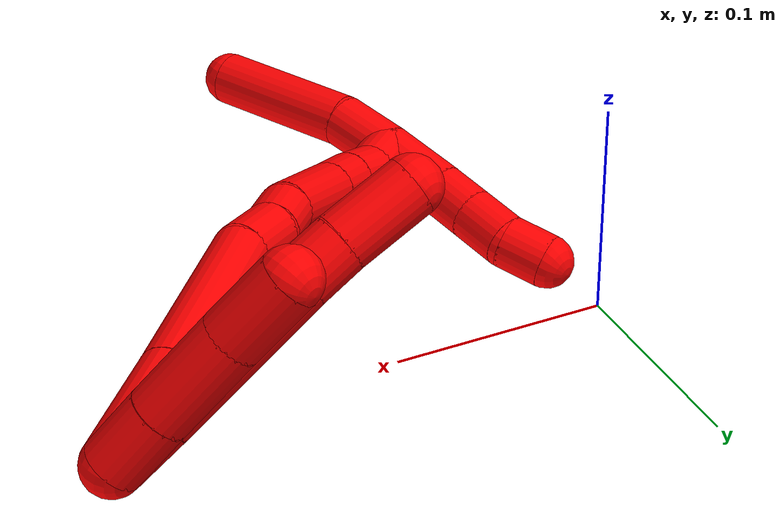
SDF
<sdf version="1.7">
 <world name="default">
  <model name="photoneo_s_sensor">
   <static>1</static>
   <pose>0 0 2 1.57079 1.57079 3.14159</pose>
   <link name="link">
    <inertial><mass>0.1</mass></inertial>
    <sensor name="sensor" type="depth">
     <update_rate>30</update_rate>
     <camera>
      <horizontal_fov>1.22</horizontal_fov>
      <image><width>1920</width><height>1200</height><format>B8G8R8</format></image>
      <clip><near>0.1</near><far>4</far></clip>
      <depth_camera><output>points</output></depth_camera>
     </camera>
     <plugin name="camera_plugin" filename="libgazebo_ros_depth_camera.so">
      <baseline>0.2</baseline>
      <alwaysOn>1</alwaysOn>
      <updateRate>0.0</updateRate>
      <cameraName>camera_ir</cameraName>
      <imageTopicName>/camera/color/image_raw</imageTopicName>
      <cameraInfoTopicName>/camera/color/camera_info</cameraInfoTopicName>
      <depthImageTopicName>/camera/depth/image_raw</depthImageTopicName>
      <depthImageCameraInfoTopicName>/camera/depth/camera_info</depthImageCameraInfoTopicName>
      <pointCloudTopicName>/camera/depth/points</pointCloudTopicName>
      <frameName>fr_optical</frameName>
      <pointCloudCutoff>0.1</pointCloudCutoff>
      <pointCloudCutoffMax>2.0</pointCloudCutoffMax>
      <distortionK1>0</distortionK1>
      <distortionK2>0</distortionK2>
      <distortionK3>0</distortionK3>
      <distortionT1>0</distortionT1>
      <distortionT2>0</distortionT2>
      <CxPrime>0</CxPrime>
      <Cx>0</Cx>
      <Cy>0</Cy>
      <focalLength>0</focalLength>
      <hackBaseline>0</hackBaseline>
     </plugin>
    </sensor>
   </link>
  </model>
  <model name="bin">
   <static>1</static>
   <link name="bottom">
    <collision name="collision-bottom">
     <pose>0 0 -0.01 0 -0 0</pose>
     <geometry><box><size>0.8 0.6 0.02</size></box></geometry>
     <surface>
      <friction><ode><mu>100</mu><mu2>100</mu2></ode></friction>
      <contact><collide_bitmask>65535</collide_bitmask></contact>
     </surface>
    </collision>
   </link>
   <link name="west_wall">
    <collision name="collision-west_wall">
     <pose>-0.41 0 0.1 0 -0 0</pose>
     <geometry><box><size>0.02 0.6 0.2</size></box></geometry>
     <surface>
      <friction><ode><mu>100</mu><mu2>100</mu2></ode></friction>
      <contact><collide_bitmask>65535</collide_bitmask></contact>
     </surface>
    </collision>
   </link>
   <link name="east_wall">
    <collision name="collision-east_wall">
     <pose>0.41 0 0.1 0 -0 0</pose>
     <geometry><box><size>0.02 0.6 0.2</size></box></geometry>
     <surface>
      <friction><ode><mu>100</mu><mu2>100</mu2></ode></friction>
      <contact><collide_bitmask>65535</collide_bitmask></contact>
     </surface>
    </collision>
   </link>
   <link name="south_wall">
    <collision name="collision-south_wall">
     <pose>0 -0.31 0.1 0 -0 0</pose>
     <geometry><box><size>0.8 0.02 0.2</size></box></geometry>
     <surface>
      <friction><ode><mu>100</mu><mu2>100</mu2></ode></friction>
      <contact><collide_bitmask>65535</collide_bitmask></contact>
     </surface>
    </collision>
   </link>
   <link name="north_wall">
    <collision name="collision-north_wall">
     <pose>0 0.31 0.1 0 -0 0</pose>
     <geometry><box><size>0.8 0.02 0.2</size></box></geometry>
     <surface>
      <friction><ode><mu>100</mu><mu2>100</mu2></ode></friction>
      <contact><collide_bitmask>65535</collide_bitmask></contact>
     </surface>
    </collision>
   </link>
  </model>
  <model name="2">
   <static>0</static>
   <link name="2">
    <collision name="collision-cylinder-e_1_2_8">
     <pose>-0.011923 0.000259 -0.001234 -2.93485 -1.4654 2.91201</pose>
     <geometry><cylinder><radius>0.0125</radius><length>0.023979</length></cylinder></geometry>
     <surface>
      <friction><ode><mu>1.16</mu><mu2>1.16</mu2><slip1>0</slip1><slip2>0</slip2></ode></friction>
      <contact><ode><kp>1e+06</kp><kd>1</kd><max_vel>0</max_vel><min_depth>0.001</min_depth></ode></contact>
     </surface>
    </collision>
    <visual name="visual-cylinder-e_1_2_8">
     <pose>-0.011923 0.000259 -0.001234 -2.93485 -1.4654 2.91201</pose>
     <geometry><cylinder><radius>0.0125</radius><length>0.023979</length></cylinder></geometry>
     <material><ambient>1 0 0 1</ambient></material>
    </visual>
    <collision name="collision-cylinder-e_2_8_9">
     <pose>-0.059574 0.000825 -0.005095 -3.0251 -1.49692 3.01619</pose>
     <geometry><cylinder><radius>0.0125</radius><length>0.071653</length></cylinder></geometry>
     <surface>
      <friction><ode><mu>1.16</mu><mu2>1.16</mu2><slip1>0</slip1><slip2>0</slip2></ode></friction>
      <contact><ode><kp>1e+06</kp><kd>1</kd><max_vel>0</max_vel><min_depth>0.001</min_depth></ode></contact>
     </surface>
    </collision>
    <visual name="visual-cylinder-e_2_8_9">
     <pose>-0.059574 0.000825 -0.005095 -3.0251 -1.49692 3.01619</pose>
     <geometry><cylinder><radius>0.0125</radius><length>0.071653</length></cylinder></geometry>
     <material><ambient>1 0 0 1</ambient></material>
    </visual>
    <collision name="collision-cylinder-e_3_9_10">
     <pose>-0.105323 0.001078 -0.008837 3.09229 -1.45986 -3.0865</pose>
     <geometry><cylinder><radius>0.0125</radius><length>0.020165</length></cylinder></geometry>
     <surface>
      <friction><ode><mu>1.16</mu><mu2>1.16</mu2><slip1>0</slip1><slip2>0</slip2></ode></friction>
      <contact><ode><kp>1e+06</kp><kd>1</kd><max_vel>0</max_vel><min_depth>0.001</min_depth></ode></contact>
     </surface>
    </collision>
    <visual name="visual-cylinder-e_3_9_10">
     <pose>-0.105323 0.001078 -0.008837 3.09229 -1.45986 -3.0865</pose>
     <geometry><cylinder><radius>0.0125</radius><length>0.020165</length></cylinder></geometry>
     <material><ambient>1 0 0 1</ambient></material>
    </visual>
    <collision name="collision-cylinder-e_4_10_6">
     <pose>-0.132205 0.000113 -0.01266 2.81767 -1.40294 -2.7595</pose>
     <geometry><cylinder><radius>0.0125</radius><length>0.034204</length></cylinder></geometry>
     <surface>
      <friction><ode><mu>1.16</mu><mu2>1.16</mu2><slip1>0</slip1><slip2>0</slip2></ode></friction>
      <contact><ode><kp>1e+06</kp><kd>1</kd><max_vel>0</max_vel><min_depth>0.001</min_depth></ode></contact>
     </surface>
    </collision>
    <visual name="visual-cylinder-e_4_10_6">
     <pose>-0.132205 0.000113 -0.01266 2.81767 -1.40294 -2.7595</pose>
     <geometry><cylinder><radius>0.0125</radius><length>0.034204</length></cylinder></geometry>
     <material><ambient>1 0 0 1</ambient></material>
    </visual>
    <collision name="collision-cylinder-e_1_2_11">
     <pose>-0.012004 0.005949 -0.003703 -2.12762 -1.04238 1.60396</pose>
     <geometry><cylinder><radius>0.0125</radius><length>0.027799</length></cylinder></geometry>
     <surface>
      <friction><ode><mu>1.16</mu><mu2>1.16</mu2><slip1>0</slip1><slip2>0</slip2></ode></friction>
      <contact><ode><kp>1e+06</kp><kd>1</kd><max_vel>0</max_vel><min_depth>0.001</min_depth></ode></contact>
     </surface>
    </collision>
    <visual name="visual-cylinder-e_1_2_11">
     <pose>-0.012004 0.005949 -0.003703 -2.12762 -1.04238 1.60396</pose>
     <geometry><cylinder><radius>0.0125</radius><length>0.027799</length></cylinder></geometry>
     <material><ambient>1 0 0 1</ambient></material>
    </visual>
    <collision name="collision-cylinder-e_2_11_12">
     <pose>-0.041507 0.019971 -0.012944 -2.17197 -1.06077 1.67793</pose>
     <geometry><cylinder><radius>0.0125</radius><length>0.040102</length></cylinder></geometry>
     <surface>
      <friction><ode><mu>1.16</mu><mu2>1.16</mu2><slip1>0</slip1><slip2>0</slip2></ode></friction>
      <contact><ode><kp>1e+06</kp><kd>1</kd><max_vel>0</max_vel><min_depth>0.001</min_depth></ode></contact>
     </surface>
    </collision>
    <visual name="visual-cylinder-e_2_11_12">
     <pose>-0.041507 0.019971 -0.012944 -2.17197 -1.06077 1.67793</pose>
     <geometry><cylinder><radius>0.0125</radius><length>0.040102</length></cylinder></geometry>
     <material><ambient>1 0 0 1</ambient></material>
    </visual>
    <collision name="collision-cylinder-e_3_12_5">
     <pose>-0.072681 0.034828 -0.023435 -2.20151 -1.01991 1.66681</pose>
     <geometry><cylinder><radius>0.0125</radius><length>0.032099</length></cylinder></geometry>
     <surface>
      <friction><ode><mu>1.16</mu><mu2>1.16</mu2><slip1>0</slip1><slip2>0</slip2></ode></friction>
      <contact><ode><kp>1e+06</kp><kd>1</kd><max_vel>0</max_vel><min_depth>0.001</min_depth></ode></contact>
     </surface>
    </collision>
    <visual name="visual-cylinder-e_3_12_5">
     <pose>-0.072681 0.034828 -0.023435 -2.20151 -1.01991 1.66681</pose>
     <geometry><cylinder><radius>0.0125</radius><length>0.032099</length></cylinder></geometry>
     <material><ambient>1 0 0 1</ambient></material>
    </visual>
    <collision name="collision-cylinder-e_1_2_13">
     <pose>-0.020499 -0.014405 0.012739 0.846705 -0.817334 -0.385419</pose>
     <geometry><cylinder><radius>0.0125</radius><length>0.056214</length></cylinder></geometry>
     <surface>
      <friction><ode><mu>1.16</mu><mu2>1.16</mu2><slip1>0</slip1><slip2>0</slip2></ode></friction>
      <contact><ode><kp>1e+06</kp><kd>1</kd><max_vel>0</max_vel><min_depth>0.001</min_depth></ode></contact>
     </surface>
    </collision>
    <visual name="visual-cylinder-e_1_2_13">
     <pose>-0.020499 -0.014405 0.012739 0.846705 -0.817334 -0.385419</pose>
     <geometry><cylinder><radius>0.0125</radius><length>0.056214</length></cylinder></geometry>
     <material><ambient>1 0 0 1</ambient></material>
    </visual>
    <collision name="collision-cylinder-e_2_13_14">
     <pose>-0.072266 -0.052971 0.047068 0.841518 -0.767599 -0.357551</pose>
     <geometry><cylinder><radius>0.0125</radius><length>0.090057</length></cylinder></geometry>
     <surface>
      <friction><ode><mu>1.16</mu><mu2>1.16</mu2><slip1>0</slip1><slip2>0</slip2></ode></friction>
      <contact><ode><kp>1e+06</kp><kd>1</kd><max_vel>0</max_vel><min_depth>0.001</min_depth></ode></contact>
     </surface>
    </collision>
    <visual name="visual-cylinder-e_2_13_14">
     <pose>-0.072266 -0.052971 0.047068 0.841518 -0.767599 -0.357551</pose>
     <geometry><cylinder><radius>0.0125</radius><length>0.090057</length></cylinder></geometry>
     <material><ambient>1 0 0 1</ambient></material>
    </visual>
    <collision name="collision-cylinder-e_3_14_15">
     <pose>-0.11275 -0.085929 0.072189 1.18915 -0.771232 -0.5358</pose>
     <geometry><cylinder><radius>0.0125</radius><length>0.026442</length></cylinder></geometry>
     <surface>
      <friction><ode><mu>1.16</mu><mu2>1.16</mu2><slip1>0</slip1><slip2>0</slip2></ode></friction>
      <contact><ode><kp>1e+06</kp><kd>1</kd><max_vel>0</max_vel><min_depth>0.001</min_depth></ode></contact>
     </surface>
    </collision>
    <visual name="visual-cylinder-e_3_14_15">
     <pose>-0.11275 -0.085929 0.072189 1.18915 -0.771232 -0.5358</pose>
     <geometry><cylinder><radius>0.0125</radius><length>0.026442</length></cylinder></geometry>
     <material><ambient>1 0 0 1</ambient></material>
    </visual>
    <collision name="collision-cylinder-e_4_15_16">
     <pose>-0.128432 -0.100995 0.080313 0.938468 -0.694117 -0.362734</pose>
     <geometry><cylinder><radius>0.0125</radius><length>0.020221</length></cylinder></geometry>
     <surface>
      <friction><ode><mu>1.16</mu><mu2>1.16</mu2><slip1>0</slip1><slip2>0</slip2></ode></friction>
      <contact><ode><kp>1e+06</kp><kd>1</kd><max_vel>0</max_vel><min_depth>0.001</min_depth></ode></contact>
     </surface>
    </collision>
    <visual name="visual-cylinder-e_4_15_16">
     <pose>-0.128432 -0.100995 0.080313 0.938468 -0.694117 -0.362734</pose>
     <geometry><cylinder><radius>0.0125</radius><length>0.020221</length></cylinder></geometry>
     <material><ambient>1 0 0 1</ambient></material>
    </visual>
    <collision name="collision-cylinder-e_5_16_17">
     <pose>-0.147893 -0.124195 0.090663 1.24303 -0.628322 -0.457278</pose>
     <geometry><cylinder><radius>0.0125</radius><length>0.044211</length></cylinder></geometry>
     <surface>
      <friction><ode><mu>1.16</mu><mu2>1.16</mu2><slip1>0</slip1><slip2>0</slip2></ode></friction>
      <contact><ode><kp>1e+06</kp><kd>1</kd><max_vel>0</max_vel><min_depth>0.001</min_depth></ode></contact>
     </surface>
    </collision>
    <visual name="visual-cylinder-e_5_16_17">
     <pose>-0.147893 -0.124195 0.090663 1.24303 -0.628322 -0.457278</pose>
     <geometry><cylinder><radius>0.0125</radius><length>0.044211</length></cylinder></geometry>
     <material><ambient>1 0 0 1</ambient></material>
    </visual>
    <collision name="collision-cylinder-e_6_17_18">
     <pose>-0.167335 -0.148858 0.099015 1.24692 -0.669051 -0.489894</pose>
     <geometry><cylinder><radius>0.0125</radius><length>0.020793</length></cylinder></geometry>
     <surface>
      <friction><ode><mu>1.16</mu><mu2>1.16</mu2><slip1>0</slip1><slip2>0</slip2></ode></friction>
      <contact><ode><kp>1e+06</kp><kd>1</kd><max_vel>0</max_vel><min_depth>0.001</min_depth></ode></contact>
     </surface>
    </collision>
    <visual name="visual-cylinder-e_6_17_18">
     <pose>-0.167335 -0.148858 0.099015 1.24692 -0.669051 -0.489894</pose>
     <geometry><cylinder><radius>0.0125</radius><length>0.020793</length></cylinder></geometry>
     <material><ambient>1 0 0 1</ambient></material>
    </visual>
    <collision name="collision-cylinder-e_7_18_19">
     <pose>-0.180393 -0.164587 0.103336 1.35835 -0.679466 -0.555887</pose>
     <geometry><cylinder><radius>0.0125</radius><length>0.021036</length></cylinder></geometry>
     <surface>
      <friction><ode><mu>1.16</mu><mu2>1.16</mu2><slip1>0</slip1><slip2>0</slip2></ode></friction>
      <contact><ode><kp>1e+06</kp><kd>1</kd><max_vel>0</max_vel><min_depth>0.001</min_depth></ode></contact>
     </surface>
    </collision>
    <visual name="visual-cylinder-e_7_18_19">
     <pose>-0.180393 -0.164587 0.103336 1.35835 -0.679466 -0.555887</pose>
     <geometry><cylinder><radius>0.0125</radius><length>0.021036</length></cylinder></geometry>
     <material><ambient>1 0 0 1</ambient></material>
    </visual>
    <collision name="collision-cylinder-e_8_19_1">
     <pose>-0.194947 -0.178423 0.108712 1.0119 -0.856701 -0.49559</pose>
     <geometry><cylinder><radius>0.0125</radius><length>0.021027</length></cylinder></geometry>
     <surface>
      <friction><ode><mu>1.16</mu><mu2>1.16</mu2><slip1>0</slip1><slip2>0</slip2></ode></friction>
      <contact><ode><kp>1e+06</kp><kd>1</kd><max_vel>0</max_vel><min_depth>0.001</min_depth></ode></contact>
     </surface>
    </collision>
    <visual name="visual-cylinder-e_8_19_1">
     <pose>-0.194947 -0.178423 0.108712 1.0119 -0.856701 -0.49559</pose>
     <geometry><cylinder><radius>0.0125</radius><length>0.021027</length></cylinder></geometry>
     <material><ambient>1 0 0 1</ambient></material>
    </visual>
    <collision name="collision-cylinder-e_1_1_20">
     <pose>-0.202607 -0.18415 0.127387 -0.00743 0.018958 -7e-05</pose>
     <geometry><cylinder><radius>0.0125</radius><length>0.030054</length></cylinder></geometry>
     <surface>
      <friction><ode><mu>1.16</mu><mu2>1.16</mu2><slip1>0</slip1><slip2>0</slip2></ode></friction>
      <contact><ode><kp>1e+06</kp><kd>1</kd><max_vel>0</max_vel><min_depth>0.001</min_depth></ode></contact>
     </surface>
    </collision>
    <visual name="visual-cylinder-e_1_1_20">
     <pose>-0.202607 -0.18415 0.127387 -0.00743 0.018958 -7e-05</pose>
     <geometry><cylinder><radius>0.0125</radius><length>0.030054</length></cylinder></geometry>
     <material><ambient>1 0 0 1</ambient></material>
    </visual>
    <collision name="collision-cylinder-e_2_20_4">
     <pose>-0.19551 -0.186234 0.176644 0.064049 0.196037 0.0063</pose>
     <geometry><cylinder><radius>0.0125</radius><length>0.069946</length></cylinder></geometry>
     <surface>
      <friction><ode><mu>1.16</mu><mu2>1.16</mu2><slip1>0</slip1><slip2>0</slip2></ode></friction>
      <contact><ode><kp>1e+06</kp><kd>1</kd><max_vel>0</max_vel><min_depth>0.001</min_depth></ode></contact>
     </surface>
    </collision>
    <visual name="visual-cylinder-e_2_20_4">
     <pose>-0.19551 -0.186234 0.176644 0.064049 0.196037 0.0063</pose>
     <geometry><cylinder><radius>0.0125</radius><length>0.069946</length></cylinder></geometry>
     <material><ambient>1 0 0 1</ambient></material>
    </visual>
    <collision name="collision-cylinder-e_1_1_21">
     <pose>-0.202513 -0.185179 0.094811 3.08936 0.021575 0.783336</pose>
     <geometry><cylinder><radius>0.0125</radius><length>0.035162</length></cylinder></geometry>
     <surface>
      <friction><ode><mu>1.16</mu><mu2>1.16</mu2><slip1>0</slip1><slip2>0</slip2></ode></friction>
      <contact><ode><kp>1e+06</kp><kd>1</kd><max_vel>0</max_vel><min_depth>0.001</min_depth></ode></contact>
     </surface>
    </collision>
    <visual name="visual-cylinder-e_1_1_21">
     <pose>-0.202513 -0.185179 0.094811 3.08936 0.021575 0.783336</pose>
     <geometry><cylinder><radius>0.0125</radius><length>0.035162</length></cylinder></geometry>
     <material><ambient>1 0 0 1</ambient></material>
    </visual>
    <collision name="collision-cylinder-e_2_21_22">
     <pose>-0.201528 -0.186045 0.066905 -3.1366 0.058437 -2.97129</pose>
     <geometry><cylinder><radius>0.0125</radius><length>0.020741</length></cylinder></geometry>
     <surface>
      <friction><ode><mu>1.16</mu><mu2>1.16</mu2><slip1>0</slip1><slip2>0</slip2></ode></friction>
      <contact><ode><kp>1e+06</kp><kd>1</kd><max_vel>0</max_vel><min_depth>0.001</min_depth></ode></contact>
     </surface>
    </collision>
    <visual name="visual-cylinder-e_2_21_22">
     <pose>-0.201528 -0.186045 0.066905 -3.1366 0.058437 -2.97129</pose>
     <geometry><cylinder><radius>0.0125</radius><length>0.020741</length></cylinder></geometry>
     <material><ambient>1 0 0 1</ambient></material>
    </visual>
    <collision name="collision-cylinder-e_3_22_23">
     <pose>-0.200177 -0.185731 0.045062 -3.11877 0.06473 -2.46387</pose>
     <geometry><cylinder><radius>0.0125</radius><length>0.023035</length></cylinder></geometry>
     <surface>
      <friction><ode><mu>1.16</mu><mu2>1.16</mu2><slip1>0</slip1><slip2>0</slip2></ode></friction>
      <contact><ode><kp>1e+06</kp><kd>1</kd><max_vel>0</max_vel><min_depth>0.001</min_depth></ode></contact>
     </surface>
    </collision>
    <visual name="visual-cylinder-e_3_22_23">
     <pose>-0.200177 -0.185731 0.045062 -3.11877 0.06473 -2.46387</pose>
     <geometry><cylinder><radius>0.0125</radius><length>0.023035</length></cylinder></geometry>
     <material><ambient>1 0 0 1</ambient></material>
    </visual>
    <collision name="collision-cylinder-e_4_23_3">
     <pose>-0.20144 -0.187374 0.023411 2.95628 -0.19186 -1.6057</pose>
     <geometry><cylinder><radius>0.0125</radius><length>0.021062</length></cylinder></geometry>
     <surface>
      <friction><ode><mu>1.16</mu><mu2>1.16</mu2><slip1>0</slip1><slip2>0</slip2></ode></friction>
      <contact><ode><kp>1e+06</kp><kd>1</kd><max_vel>0</max_vel><min_depth>0.001</min_depth></ode></contact>
     </surface>
    </collision>
    <visual name="visual-cylinder-e_4_23_3">
     <pose>-0.20144 -0.187374 0.023411 2.95628 -0.19186 -1.6057</pose>
     <geometry><cylinder><radius>0.0125</radius><length>0.021062</length></cylinder></geometry>
     <material><ambient>1 0 0 1</ambient></material>
    </visual>
    <collision name="collision-sphere-3">
     <pose>-0.203448 -0.189279 0.01325 0 -0 0</pose>
     <geometry><sphere><radius>0.0125</radius></sphere></geometry>
     <surface>
      <friction><ode><mu>1.16</mu><mu2>1.16</mu2><slip1>0</slip1><slip2>0</slip2></ode></friction>
      <contact><ode><kp>1e+06</kp><kd>1</kd><max_vel>0</max_vel><min_depth>0.001</min_depth></ode></contact>
     </surface>
    </collision>
    <visual name="visual-sphere-3">
     <pose>-0.203448 -0.189279 0.01325 0 -0 0</pose>
     <geometry><sphere><radius>0.0125</radius></sphere></geometry>
     <material><ambient>1 0 0 1</ambient></material>
    </visual>
    <collision name="collision-sphere-23">
     <pose>-0.199432 -0.185469 0.033572 0 -0 0</pose>
     <geometry><sphere><radius>0.0125</radius></sphere></geometry>
     <surface>
      <friction><ode><mu>1.16</mu><mu2>1.16</mu2><slip1>0</slip1><slip2>0</slip2></ode></friction>
      <contact><ode><kp>1e+06</kp><kd>1</kd><max_vel>0</max_vel><min_depth>0.001</min_depth></ode></contact>
     </surface>
    </collision>
    <visual name="visual-sphere-23">
     <pose>-0.199432 -0.185469 0.033572 0 -0 0</pose>
     <geometry><sphere><radius>0.0125</radius></sphere></geometry>
     <material><ambient>1 0 0 1</ambient></material>
    </visual>
    <collision name="collision-sphere-22">
     <pose>-0.200922 -0.185993 0.056552 0 -0 0</pose>
     <geometry><sphere><radius>0.0125</radius></sphere></geometry>
     <surface>
      <friction><ode><mu>1.16</mu><mu2>1.16</mu2><slip1>0</slip1><slip2>0</slip2></ode></friction>
      <contact><ode><kp>1e+06</kp><kd>1</kd><max_vel>0</max_vel><min_depth>0.001</min_depth></ode></contact>
     </surface>
    </collision>
    <visual name="visual-sphere-22">
     <pose>-0.200922 -0.185993 0.056552 0 -0 0</pose>
     <geometry><sphere><radius>0.0125</radius></sphere></geometry>
     <material><ambient>1 0 0 1</ambient></material>
    </visual>
    <collision name="collision-sphere-21">
     <pose>-0.202133 -0.186097 0.077258 0 -0 0</pose>
     <geometry><sphere><radius>0.0125</radius></sphere></geometry>
     <surface>
      <friction><ode><mu>1.16</mu><mu2>1.16</mu2><slip1>0</slip1><slip2>0</slip2></ode></friction>
      <contact><ode><kp>1e+06</kp><kd>1</kd><max_vel>0</max_vel><min_depth>0.001</min_depth></ode></contact>
     </surface>
    </collision>
    <visual name="visual-sphere-21">
     <pose>-0.202133 -0.186097 0.077258 0 -0 0</pose>
     <geometry><sphere><radius>0.0125</radius></sphere></geometry>
     <material><ambient>1 0 0 1</ambient></material>
    </visual>
    <collision name="collision-sphere-4">
     <pose>-0.188698 -0.188429 0.210877 0 -0 0</pose>
     <geometry><sphere><radius>0.0125</radius></sphere></geometry>
     <surface>
      <friction><ode><mu>1.16</mu><mu2>1.16</mu2><slip1>0</slip1><slip2>0</slip2></ode></friction>
      <contact><ode><kp>1e+06</kp><kd>1</kd><max_vel>0</max_vel><min_depth>0.001</min_depth></ode></contact>
     </surface>
    </collision>
    <visual name="visual-sphere-4">
     <pose>-0.188698 -0.188429 0.210877 0 -0 0</pose>
     <geometry><sphere><radius>0.0125</radius></sphere></geometry>
     <material><ambient>1 0 0 1</ambient></material>
    </visual>
    <collision name="collision-sphere-20">
     <pose>-0.202322 -0.184038 0.142411 0 -0 0</pose>
     <geometry><sphere><radius>0.0125</radius></sphere></geometry>
     <surface>
      <friction><ode><mu>1.16</mu><mu2>1.16</mu2><slip1>0</slip1><slip2>0</slip2></ode></friction>
      <contact><ode><kp>1e+06</kp><kd>1</kd><max_vel>0</max_vel><min_depth>0.001</min_depth></ode></contact>
     </surface>
    </collision>
    <visual name="visual-sphere-20">
     <pose>-0.202322 -0.184038 0.142411 0 -0 0</pose>
     <geometry><sphere><radius>0.0125</radius></sphere></geometry>
     <material><ambient>1 0 0 1</ambient></material>
    </visual>
    <collision name="collision-sphere-11">
     <pose>-0.024007 0.011898 -0.007407 0 -0 0</pose>
     <geometry><sphere><radius>0.0125</radius></sphere></geometry>
     <surface>
      <friction><ode><mu>1.16</mu><mu2>1.16</mu2><slip1>0</slip1><slip2>0</slip2></ode></friction>
      <contact><ode><kp>1e+06</kp><kd>1</kd><max_vel>0</max_vel><min_depth>0.001</min_depth></ode></contact>
     </surface>
    </collision>
    <visual name="visual-sphere-11">
     <pose>-0.024007 0.011898 -0.007407 0 -0 0</pose>
     <geometry><sphere><radius>0.0125</radius></sphere></geometry>
     <material><ambient>1 0 0 1</ambient></material>
    </visual>
    <collision name="collision-sphere-6">
     <pose>-0.149067 -0.000796 -0.015369 0 -0 0</pose>
     <geometry><sphere><radius>0.0125</radius></sphere></geometry>
     <surface>
      <friction><ode><mu>1.16</mu><mu2>1.16</mu2><slip1>0</slip1><slip2>0</slip2></ode></friction>
      <contact><ode><kp>1e+06</kp><kd>1</kd><max_vel>0</max_vel><min_depth>0.001</min_depth></ode></contact>
     </surface>
    </collision>
    <visual name="visual-sphere-6">
     <pose>-0.149067 -0.000796 -0.015369 0 -0 0</pose>
     <geometry><sphere><radius>0.0125</radius></sphere></geometry>
     <material><ambient>1 0 0 1</ambient></material>
    </visual>
    <collision name="collision-sphere-10">
     <pose>-0.115344 0.001023 -0.009952 0 -0 0</pose>
     <geometry><sphere><radius>0.0125</radius></sphere></geometry>
     <surface>
      <friction><ode><mu>1.16</mu><mu2>1.16</mu2><slip1>0</slip1><slip2>0</slip2></ode></friction>
      <contact><ode><kp>1e+06</kp><kd>1</kd><max_vel>0</max_vel><min_depth>0.001</min_depth></ode></contact>
     </surface>
    </collision>
    <visual name="visual-sphere-10">
     <pose>-0.115344 0.001023 -0.009952 0 -0 0</pose>
     <geometry><sphere><radius>0.0125</radius></sphere></geometry>
     <material><ambient>1 0 0 1</ambient></material>
    </visual>
    <collision name="collision-sphere-9">
     <pose>-0.095303 0.001133 -0.007722 0 -0 0</pose>
     <geometry><sphere><radius>0.0125</radius></sphere></geometry>
     <surface>
      <friction><ode><mu>1.16</mu><mu2>1.16</mu2><slip1>0</slip1><slip2>0</slip2></ode></friction>
      <contact><ode><kp>1e+06</kp><kd>1</kd><max_vel>0</max_vel><min_depth>0.001</min_depth></ode></contact>
     </surface>
    </collision>
    <visual name="visual-sphere-9">
     <pose>-0.095303 0.001133 -0.007722 0 -0 0</pose>
     <geometry><sphere><radius>0.0125</radius></sphere></geometry>
     <material><ambient>1 0 0 1</ambient></material>
    </visual>
    <collision name="collision-sphere-2">
     <geometry><sphere><radius>0.0125</radius></sphere></geometry>
     <surface>
      <friction><ode><mu>1.16</mu><mu2>1.16</mu2><slip1>0</slip1><slip2>0</slip2></ode></friction>
      <contact><ode><kp>1e+06</kp><kd>1</kd><max_vel>0</max_vel><min_depth>0.001</min_depth></ode></contact>
     </surface>
    </collision>
    <visual name="visual-sphere-2">
     <geometry><sphere><radius>0.0125</radius></sphere></geometry>
     <material><ambient>1 0 0 1</ambient></material>
    </visual>
    <collision name="collision-sphere-19">
     <pose>-0.187002 -0.172585 0.105061 0 -0 0</pose>
     <geometry><sphere><radius>0.0125</radius></sphere></geometry>
     <surface>
      <friction><ode><mu>1.16</mu><mu2>1.16</mu2><slip1>0</slip1><slip2>0</slip2></ode></friction>
      <contact><ode><kp>1e+06</kp><kd>1</kd><max_vel>0</max_vel><min_depth>0.001</min_depth></ode></contact>
     </surface>
    </collision>
    <visual name="visual-sphere-19">
     <pose>-0.187002 -0.172585 0.105061 0 -0 0</pose>
     <geometry><sphere><radius>0.0125</radius></sphere></geometry>
     <material><ambient>1 0 0 1</ambient></material>
    </visual>
    <collision name="collision-sphere-8">
     <pose>-0.023846 0.000518 -0.002469 0 -0 0</pose>
     <geometry><sphere><radius>0.0125</radius></sphere></geometry>
     <surface>
      <friction><ode><mu>1.16</mu><mu2>1.16</mu2><slip1>0</slip1><slip2>0</slip2></ode></friction>
      <contact><ode><kp>1e+06</kp><kd>1</kd><max_vel>0</max_vel><min_depth>0.001</min_depth></ode></contact>
     </surface>
    </collision>
    <visual name="visual-sphere-8">
     <pose>-0.023846 0.000518 -0.002469 0 -0 0</pose>
     <geometry><sphere><radius>0.0125</radius></sphere></geometry>
     <material><ambient>1 0 0 1</ambient></material>
    </visual>
    <collision name="collision-sphere-12">
     <pose>-0.059006 0.028044 -0.01848 0 -0 0</pose>
     <geometry><sphere><radius>0.0125</radius></sphere></geometry>
     <surface>
      <friction><ode><mu>1.16</mu><mu2>1.16</mu2><slip1>0</slip1><slip2>0</slip2></ode></friction>
      <contact><ode><kp>1e+06</kp><kd>1</kd><max_vel>0</max_vel><min_depth>0.001</min_depth></ode></contact>
     </surface>
    </collision>
    <visual name="visual-sphere-12">
     <pose>-0.059006 0.028044 -0.01848 0 -0 0</pose>
     <geometry><sphere><radius>0.0125</radius></sphere></geometry>
     <material><ambient>1 0 0 1</ambient></material>
    </visual>
    <collision name="collision-sphere-5">
     <pose>-0.086356 0.041613 -0.028389 0 -0 0</pose>
     <geometry><sphere><radius>0.0125</radius></sphere></geometry>
     <surface>
      <friction><ode><mu>1.16</mu><mu2>1.16</mu2><slip1>0</slip1><slip2>0</slip2></ode></friction>
      <contact><ode><kp>1e+06</kp><kd>1</kd><max_vel>0</max_vel><min_depth>0.001</min_depth></ode></contact>
     </surface>
    </collision>
    <visual name="visual-sphere-5">
     <pose>-0.086356 0.041613 -0.028389 0 -0 0</pose>
     <geometry><sphere><radius>0.0125</radius></sphere></geometry>
     <material><ambient>1 0 0 1</ambient></material>
    </visual>
    <collision name="collision-sphere-13">
     <pose>-0.040998 -0.02881 0.025478 0 -0 0</pose>
     <geometry><sphere><radius>0.0125</radius></sphere></geometry>
     <surface>
      <friction><ode><mu>1.16</mu><mu2>1.16</mu2><slip1>0</slip1><slip2>0</slip2></ode></friction>
      <contact><ode><kp>1e+06</kp><kd>1</kd><max_vel>0</max_vel><min_depth>0.001</min_depth></ode></contact>
     </surface>
    </collision>
    <visual name="visual-sphere-13">
     <pose>-0.040998 -0.02881 0.025478 0 -0 0</pose>
     <geometry><sphere><radius>0.0125</radius></sphere></geometry>
     <material><ambient>1 0 0 1</ambient></material>
    </visual>
    <collision name="collision-sphere-14">
     <pose>-0.103534 -0.077131 0.068658 0 -0 0</pose>
     <geometry><sphere><radius>0.0125</radius></sphere></geometry>
     <surface>
      <friction><ode><mu>1.16</mu><mu2>1.16</mu2><slip1>0</slip1><slip2>0</slip2></ode></friction>
      <contact><ode><kp>1e+06</kp><kd>1</kd><max_vel>0</max_vel><min_depth>0.001</min_depth></ode></contact>
     </surface>
    </collision>
    <visual name="visual-sphere-14">
     <pose>-0.103534 -0.077131 0.068658 0 -0 0</pose>
     <geometry><sphere><radius>0.0125</radius></sphere></geometry>
     <material><ambient>1 0 0 1</ambient></material>
    </visual>
    <collision name="collision-sphere-15">
     <pose>-0.121965 -0.094727 0.07572 0 -0 0</pose>
     <geometry><sphere><radius>0.0125</radius></sphere></geometry>
     <surface>
      <friction><ode><mu>1.16</mu><mu2>1.16</mu2><slip1>0</slip1><slip2>0</slip2></ode></friction>
      <contact><ode><kp>1e+06</kp><kd>1</kd><max_vel>0</max_vel><min_depth>0.001</min_depth></ode></contact>
     </surface>
    </collision>
    <visual name="visual-sphere-15">
     <pose>-0.121965 -0.094727 0.07572 0 -0 0</pose>
     <geometry><sphere><radius>0.0125</radius></sphere></geometry>
     <material><ambient>1 0 0 1</ambient></material>
    </visual>
    <collision name="collision-sphere-16">
     <pose>-0.1349 -0.107264 0.084905 0 -0 0</pose>
     <geometry><sphere><radius>0.0125</radius></sphere></geometry>
     <surface>
      <friction><ode><mu>1.16</mu><mu2>1.16</mu2><slip1>0</slip1><slip2>0</slip2></ode></friction>
      <contact><ode><kp>1e+06</kp><kd>1</kd><max_vel>0</max_vel><min_depth>0.001</min_depth></ode></contact>
     </surface>
    </collision>
    <visual name="visual-sphere-16">
     <pose>-0.1349 -0.107264 0.084905 0 -0 0</pose>
     <geometry><sphere><radius>0.0125</radius></sphere></geometry>
     <material><ambient>1 0 0 1</ambient></material>
    </visual>
    <collision name="collision-sphere-17">
     <pose>-0.160886 -0.141127 0.09642 0 -0 0</pose>
     <geometry><sphere><radius>0.0125</radius></sphere></geometry>
     <surface>
      <friction><ode><mu>1.16</mu><mu2>1.16</mu2><slip1>0</slip1><slip2>0</slip2></ode></friction>
      <contact><ode><kp>1e+06</kp><kd>1</kd><max_vel>0</max_vel><min_depth>0.001</min_depth></ode></contact>
     </surface>
    </collision>
    <visual name="visual-sphere-17">
     <pose>-0.160886 -0.141127 0.09642 0 -0 0</pose>
     <geometry><sphere><radius>0.0125</radius></sphere></geometry>
     <material><ambient>1 0 0 1</ambient></material>
    </visual>
    <collision name="collision-sphere-18">
     <pose>-0.173783 -0.156589 0.101611 0 -0 0</pose>
     <geometry><sphere><radius>0.0125</radius></sphere></geometry>
     <surface>
      <friction><ode><mu>1.16</mu><mu2>1.16</mu2><slip1>0</slip1><slip2>0</slip2></ode></friction>
      <contact><ode><kp>1e+06</kp><kd>1</kd><max_vel>0</max_vel><min_depth>0.001</min_depth></ode></contact>
     </surface>
    </collision>
    <visual name="visual-sphere-18">
     <pose>-0.173783 -0.156589 0.101611 0 -0 0</pose>
     <geometry><sphere><radius>0.0125</radius></sphere></geometry>
     <material><ambient>1 0 0 1</ambient></material>
    </visual>
    <collision name="collision-sphere-1">
     <pose>-0.202892 -0.184262 0.112363 0 -0 0</pose>
     <geometry><sphere><radius>0.0125</radius></sphere></geometry>
     <surface>
      <friction><ode><mu>1.16</mu><mu2>1.16</mu2><slip1>0</slip1><slip2>0</slip2></ode></friction>
      <contact><ode><kp>1e+06</kp><kd>1</kd><max_vel>0</max_vel><min_depth>0.001</min_depth></ode></contact>
     </surface>
    </collision>
    <visual name="visual-sphere-1">
     <pose>-0.202892 -0.184262 0.112363 0 -0 0</pose>
     <geometry><sphere><radius>0.0125</radius></sphere></geometry>
     <material><ambient>1 0 0 1</ambient></material>
    </visual>
    <inertial>
     <pose>-0.115468 -0.0809 0.052094 0 -0 0</pose>
     <mass>0.75</mass>
     <inertia>
      <ixx>4.4e-05</ixx>
      <ixy>0</ixy>
      <ixz>0</ixz>
      <iyy>0.000132</iyy>
      <iyz>0</iyz>
      <izz>0.000174</izz>
     </inertia>
    </inertial>
   </link>
   <pose>0.258049 0.091401 0.062927 1.36631 0.542337 0.258171</pose>
  </model>
 </world>
</sdf>
